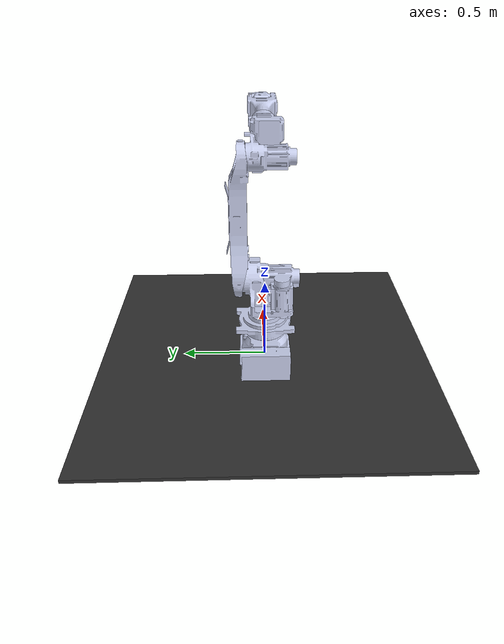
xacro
<?xml version="1.0"?>
<robot
  xmlns:xacro="http://ros.org/wiki/xacro" name="robot_arm">
  <xacro:include filename="$(find hh020_ver1)/urdf/hh020_ver1.urdf" />

  <link name="world"/>

  <link name="table">
    <visual>
      <origin xyz="0.0  0 0.01" rpy="0 0 0" />
      <geometry>
        <box size="2.0 2.0 0.02" />
      </geometry>
      <material name="table">
        <color rgba="0.192 0.192 0.192 1"/>
      </material>
    </visual>

    <collision>
      <origin xyz="0.0  0 0.01" rpy="0 0 0" />
      <geometry>
        <box size="2.0 2.0 0.02" />
      </geometry>
    </collision>
  </link>

  <joint name="world_table" type="fixed">
    <parent link="world" />
    <child link="table" />
    <origin xyz="0.0 0.0 0.0" rpy="0.0 0.0 0.0" />
  </joint>

  <joint name="table_robot" type="fixed">
    <parent link="table" />
    <child link="base_link" />
    <origin xyz="0.0 0.0 0.01" rpy="0.0 0.0 0.0" />
  </joint>

</robot>

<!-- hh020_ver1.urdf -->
<robot
  name="hh020_ver1">
  <link
    name="base_link">
    <inertial>
      <origin
        xyz="-0.094837 0.00034593 0.080005"
        rpy="0 0 0" />
      <mass
        value="17.103" />
      <inertia
        ixx="0.13544"
        ixy="0.00059306"
        ixz="0.015664"
        iyy="0.31603"
        iyz="3.3743E-05"
        izz="0.37543" />
    </inertial>
    <visual>
      <origin
        xyz="0 0 0"
        rpy="0 0 0" />
      <geometry>
        <mesh
          filename="package://hh020_ver1/meshes/base_link.STL" />
      </geometry>
      <material
        name="">
        <color
          rgba="0.79216 0.81961 0.93333 1" />
      </material>
    </visual>
    <collision>
      <origin
        xyz="0 0 0"
        rpy="0 0 0" />
      <geometry>
        <mesh
          filename="package://hh020_ver1/meshes/base_link.STL" />
      </geometry>
    </collision>
  </link>
  <link
    name="lower_frame">
    <inertial>
      <origin
        xyz="0.072067 -0.0086463 0.18762"
        rpy="0 0 0" />
      <mass
        value="19.865" />
      <inertia
        ixx="0.17864"
        ixy="-0.018812"
        ixz="-0.061412"
        iyy="0.23303"
        iyz="-0.021951"
        izz="0.18982" />
    </inertial>
    <visual>
      <origin
        xyz="0 0 0"
        rpy="0 0 0" />
      <geometry>
        <mesh
          filename="package://hh020_ver1/meshes/lower_frame.STL" />
      </geometry>
      <material
        name="">
        <color
          rgba="0.79216 0.81961 0.93333 1" />
      </material>
    </visual>
    <collision>
      <origin
        xyz="0 0 0"
        rpy="0 0 0" />
      <geometry>
        <mesh
          filename="package://hh020_ver1/meshes/lower_frame.STL" />
      </geometry>
    </collision>
  </link>
  <joint
    name="lower"
    type="revolute">
    <origin
      xyz="0 0 0.162"
      rpy="0 0 0" />
    <parent
      link="base_link" />
    <child
      link="lower_frame" />
    <axis
      xyz="0 0 1" />
    <limit
      lower="-3.229"
      upper="3.229"
      effort="150"
      velocity="3.316" />
  </joint>
  <link
    name="upper_frame">
    <inertial>
      <origin
        xyz="-0.00010751 0.0068369 0.36285"
        rpy="0 0 0" />
      <mass
        value="11.176" />
      <inertia
        ixx="0.62235"
        ixy="5.5619E-06"
        ixz="0.00028138"
        iyy="0.64621"
        iyz="0.010765"
        izz="0.038783" />
    </inertial>
    <visual>
      <origin
        xyz="0 0 0"
        rpy="0 0 0" />
      <geometry>
        <mesh
          filename="package://hh020_ver1/meshes/upper_frame.STL" />
      </geometry>
      <material
        name="">
        <color
          rgba="0.79216 0.81961 0.93333 1" />
      </material>
    </visual>
    <collision>
      <origin
        xyz="0 0 0"
        rpy="0 0 0" />
      <geometry>
        <mesh
          filename="package://hh020_ver1/meshes/upper_frame.STL" />
      </geometry>
    </collision>
  </link>
  <joint
    name="upper"
    type="revolute">
    <origin
      xyz="0.16 0.1419 0.2846"
      rpy="0 0 0" />
    <parent
      link="lower_frame" />
    <child
      link="upper_frame" />
    <axis
      xyz="0 1 0" />
    <limit
      lower="-1.222"
      upper="3.403"
      effort="150"
      velocity="3.142" />
  </joint>
  <link
    name="arm_frame">
    <inertial>
      <origin
        xyz="0.042152 -0.13965 0.080961"
        rpy="0 0 0" />
      <mass
        value="12.299" />
      <inertia
        ixx="0.077578"
        ixy="0.0039974"
        ixz="-0.014934"
        iyy="0.095659"
        iyz="0.010098"
        izz="0.073131" />
    </inertial>
    <visual>
      <origin
        xyz="0 0 0"
        rpy="0 0 0" />
      <geometry>
        <mesh
          filename="package://hh020_ver1/meshes/arm_frame.STL" />
      </geometry>
      <material
        name="">
        <color
          rgba="0.79216 0.81961 0.93333 1" />
      </material>
    </visual>
    <collision>
      <origin
        xyz="0 0 0"
        rpy="0 0 0" />
      <geometry>
        <mesh
          filename="package://hh020_ver1/meshes/arm_frame.STL" />
      </geometry>
    </collision>
  </link>
  <joint
    name="arm"
    type="revolute">
    <origin
      xyz="0 -0.0104 0.77"
      rpy="0 0 0" />
    <parent
      link="upper_frame" />
    <child
      link="arm_frame" />
    <axis
      xyz="0 1 0" />
    <limit
      lower="-1.396"
      upper="3.141"
      effort="150"
      velocity="3.316" />
  </joint>
  <link
    name="wrist_frame">
    <inertial>
      <origin
        xyz="0.33419 -0.0048996 9.1409E-05"
        rpy="0 0 0" />
      <mass
        value="6.5587" />
      <inertia
        ixx="0.017572"
        ixy="0.0048652"
        ixz="-5.6686E-05"
        iyy="0.18161"
        iyz="-9.4766E-06"
        izz="0.18844" />
    </inertial>
    <visual>
      <origin
        xyz="0 0 0"
        rpy="0 0 0" />
      <geometry>
        <mesh
          filename="package://hh020_ver1/meshes/wrist_frame.STL" />
      </geometry>
      <material
        name="">
        <color
          rgba="0.79216 0.81961 0.93333 1" />
      </material>
    </visual>
    <collision>
      <origin
        xyz="0 0 0"
        rpy="0 0 0" />
      <geometry>
        <mesh
          filename="package://hh020_ver1/meshes/wrist_frame.STL" />
      </geometry>
    </collision>
  </link>
  <joint
    name="wrist"
    type="revolute">
    <origin
      xyz="0.2135 -0.1315 0.14"
      rpy="0 0 0" />
    <parent
      link="arm_frame" />
    <child
      link="wrist_frame" />
    <axis
      xyz="1 0 0" />
    <limit
      lower="-3.403"
      upper="3.403"
      effort="39.2"
      velocity="6.632" />
  </joint>
  <link
    name="end_connector">
    <inertial>
      <origin
        xyz="0.00088677 -0.061435 0.00015943"
        rpy="0 0 0" />
      <mass
        value="2.2391" />
      <inertia
        ixx="0.0040127"
        ixy="-2.7735E-06"
        ixz="-6.8315E-06"
        iyy="0.0049003"
        iyz="-7.8348E-06"
        izz="0.0052929" />
    </inertial>
    <visual>
      <origin
        xyz="0 0 0"
        rpy="0 0 0" />
      <geometry>
        <mesh
          filename="package://hh020_ver1/meshes/end_connector.STL" />
      </geometry>
      <material
        name="">
        <color
          rgba="0.79216 0.81961 0.93333 1" />
      </material>
    </visual>
    <collision>
      <origin
        xyz="0 0 0"
        rpy="0 0 0" />
      <geometry>
        <mesh
          filename="package://hh020_ver1/meshes/end_connector.STL" />
      </geometry>
    </collision>
  </link>
  <joint
    name="end_connector"
    type="revolute">
    <origin
      xyz="0.5865 0.0615 0"
      rpy="0 0 0" />
    <parent
      link="wrist_frame" />
    <child
      link="end_connector" />
    <axis
      xyz="0 -1 0" />
    <limit
      lower="-2.356"
      upper="2.356"
      effort="39.2"
      velocity="6.632" />
  </joint>
  <link
    name="end_frame">
    <inertial>
      <origin
        xyz="0.003229 -2.5625E-14 -7.2253E-06"
        rpy="0 0 0" />
      <mass
        value="0.009731" />
      <inertia
        ixx="3.6926E-06"
        ixy="8.6418E-19"
        ixz="2.0953E-10"
        iyy="1.9671E-06"
        iyz="3.8014E-18"
        izz="1.8102E-06" />
    </inertial>
    <visual>
      <origin
        xyz="0 0 0"
        rpy="0 0 0" />
      <geometry>
        <mesh
          filename="package://hh020_ver1/meshes/end_frame.STL" />
      </geometry>
      <material
        name="">
        <color
          rgba="0.79216 0.81961 0.93333 1" />
      </material>
    </visual>
    <collision>
      <origin
        xyz="0 0 0"
        rpy="0 0 0" />
      <geometry>
        <mesh
          filename="package://hh020_ver1/meshes/end_frame.STL" />
      </geometry>
    </collision>
  </link>
  <joint
    name="end"
    type="revolute">
    <origin
      xyz="0.105 -0.0615 0"
      rpy="0 0 0" />
    <parent
      link="end_connector" />
    <child
      link="end_frame" />
    <axis
      xyz="1 0 0" />
    <limit
      lower="-6.283"
      upper="6.283"
      effort="19.6"
      velocity="10.472" />
  </joint>
</robot>
